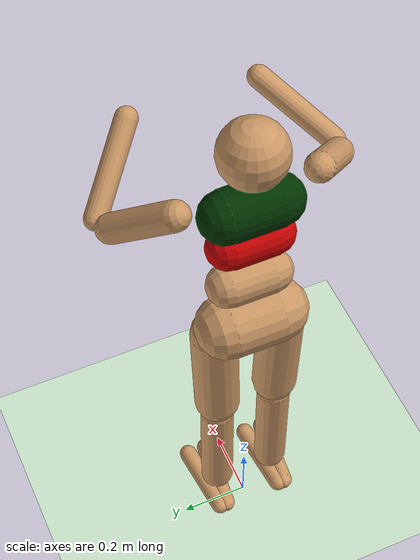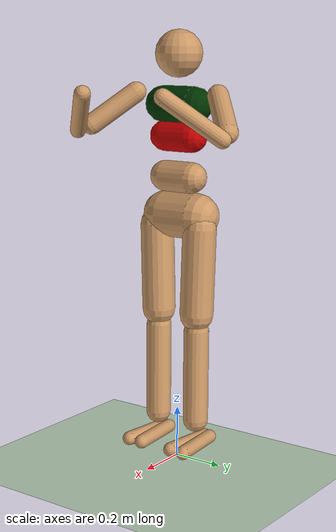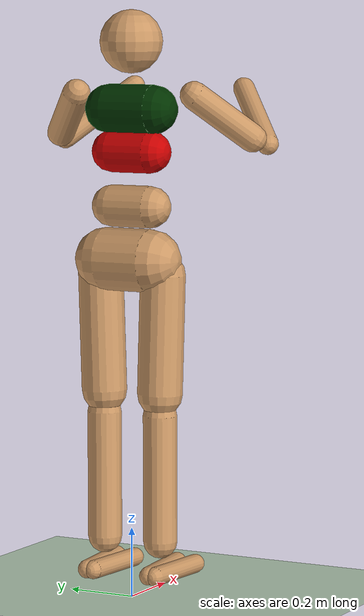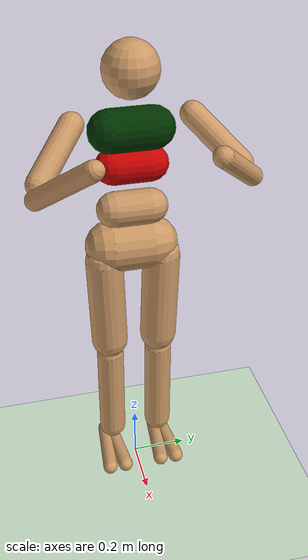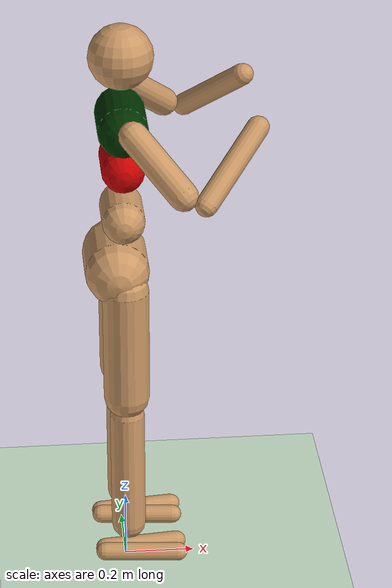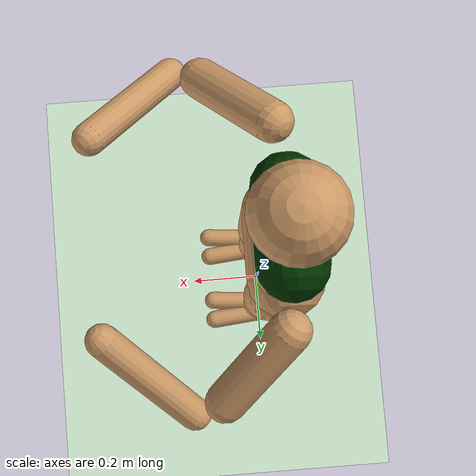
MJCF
<mujoco model="Humanoid">
  <compiler coordinate="local" angle="radian" />
  <size njmax="200" nuser_geom="1" nstack="82825" />
  <default>
    <!--   limited= 动作幅度限制是否奏效
            armature= 对action的限制，可能是时平均，可能需要见效来体现我们算法的you shi
            damping= 卡住joint的作用力，和角速度成正比
        -->
    <joint limited="true" armature="1" damping="1" />
    <geom condim="3" conaffinity="0" margin="0.1" friction="1.0 0.5 0.5" rgba="0.8 0.6 0.4 1" />
  </default>
  <option timestep="0.01" integrator="RK4" />
  <asset>
    <texture type="skybox" builtin="gradient" width="100" height="100" rgb1="1 1 1" rgb2="0 0 0" />
    <texture name="texgeom" type="cube" builtin="flat" mark="cross" width="127" height="1278" rgb1="0.8 0.6 0.4" rgb2="0.8 0.6 0.4" markrgb="1 1 1" random="0.01" />
    <texture name="texplane" type="2d" builtin="checker" rgb1="0 0 0" rgb2="0.8 0.8 0.8" width="100" height="100" />
    <material name='MatPlane' texture="texplane" shininess="1" texrepeat="60 60" specular="1"  reflectance="0.5" />
    <material name='geom' texture="texgeom" texuniform="true" />
  </asset>
  <worldbody>
    <light directional="true" cutoff="100" exponent="1" diffuse="1 1 1" specular=".1 .1 .1" pos="0 0 1.3" dir="-0 0 -1.3" />
    <geom name='floor' material="MatPlane" pos='0 0 0' size='40 40 40' type='plane' conaffinity='1' rgba='0.8 0.9 0.8 1' condim='3' />
    <body name="torso" pos="0 0 1.4">
      <inertial pos="0 0 0.0403624" mass="8.32208" diaginertia="0.159056 0.147471 0.0330627" />
      <joint name="root" type="free" limited="false" pos="0 0 0" axis="0 0 1" margin="0.01" armature="0" damping="0" />
      <geom name="torso1" type="capsule" size="0.07 0.07" pos="0 0 0" quat="0.707107 0.707107 0 0" user="0" rgba='0.0 0.2 0.0 1'/>
      <geom name="head" type="sphere" size="0.09" pos="0 0 0.19" user="0" />
      <geom name="uwaist" type="capsule" size="0.06 0.06" pos="0 0 -0.12" quat="0.707107 0.707107 0 0" user="0" rgba='0.8 0.0 0.0 1'/>
      <body name="pelvis" pos="0 0 -0.425" quat="0.999998 0 -0.002 0">
        <inertial pos="-0.0148387 0 0.0387097" quat="0.997805 0 0.0662273 0" mass="7.88854" diaginertia="0.0795697 0.0619562 0.0449816" />
        <joint name="abdomen_z" type="hinge" pos="0 0 0.22" axis="0 0 1" stiffness="20" range="-0.785398 0.785398" margin="0.01" damping="3" />
        <joint name="abdomen_x" type="hinge" pos="0 0 0.22" axis="1 0 0" stiffness="10" range="-0.349066 0.349066" margin="0.01" damping="3" />
        <joint name="abdomen_y" type="hinge" pos="0 0 0.22" axis="0 1 0" stiffness="10" range="-1.0472 0.523599" margin="0.01" damping="3" />
        <geom name="lwaist" type="capsule" size="0.06 0.06" pos="0 0 0.15" quat="0.707107 0.707107 0 0" user="0" />
        <geom name="butt" type="capsule" size="0.09 0.07" pos="-0.02 0 0" quat="0.707107 0.707107 0 0" user="0" />
        <body name="right_thigh" pos="0 -0.1 -0.04">
          <inertial pos="0 0.005 -0.17" quat="0.999892 0.0147011 0 0" mass="5.37761" diaginertia="0.0792387 0.0792387 0.0113602" />
          <joint name="right_hip1" type="hinge" pos="0 0 0" axis="1 0 0" stiffness="10" range="-0.15 0.0872665" margin="0.01" />
          <joint name="right_hip2" type="hinge" pos="0 0 0" axis="0 0 1" stiffness="10" range="-0.3 0.3" margin="0.01" />
          <joint name="right_hip3" type="hinge" pos="0 0 0" axis="0 1 0" stiffness="20" range="-1.91986 0.174533" margin="0.01" />
          <geom name="right_thigh1" type="capsule" size="0.065 0.170074" pos="0 0.005 -0.17" quat="0.999892 0.0147011 0 0" user="0" />
          <body name="right_shin" pos="0 0.01 -0.403">
            <inertial pos="0 0 -0.181" mass="3.10016" diaginertia="0.045501 0.045501 0.00372174" />
            <joint name="right_knee" type="hinge" pos="0 0 0.05" axis="0 -1 0" range="-1.7 -0.0349066" margin="0.01" />
            <geom name="right_shin1" type="capsule" size="0.049 0.181" pos="0 0 -0.181" user="0" />
            <body name="right_foot" pos="0 0 -0.45">
                            <inertial pos="0.035 -0.01 0" quat="0 0.707107 0 0.707107" mass="1.08992" diaginertia="0.00577723 0.00529682 0.000877682" />
                            <joint name="right_ankle_x" type="hinge" pos="0 0 0.06" axis="0.894427 0 0.447214" stiffness="1" range="-0.3 0.3" margin="0.01" damping="0.3" />
                            <joint name="right_ankle_y" type="hinge" pos="0 0 0.06" axis="0 1 0" stiffness="4" range="-0.4 0.8" margin="0.01" damping="0.3" />
                            <geom name="right_foot_cap1" type="capsule" size="0.027 0.105475" pos="0.035 -0.03 0" quat="0.707107 -0.0670402 -0.703922 0" user="0" />
                            <geom name="right_foot_cap2" type="capsule" size="0.027 0.105475" pos="0.035 0.01 0" quat="0.707107 0.0670402 -0.703922 0" user="0" />
                        </body>
          </body>
        </body>
        <body name="left_thigh" pos="0 0.1 -0.04">
          <inertial pos="0 -0.005 -0.17" quat="0.999892 -0.0147011 0 0" mass="5.37761" diaginertia="0.0792387 0.0792387 0.0113602" />
          <joint name="left_hip1" type="hinge" pos="0 0 0" axis="-1 0 0" stiffness="10" range="-0.15 0.0872665" margin="0.01" />
          <joint name="left_hip2" type="hinge" pos="0 0 0" axis="0 0 -1" stiffness="10" range="-0.3 0.3" margin="0.01" />
          <joint name="left_hip3" type="hinge" pos="0 0 0" axis="0 1 0" stiffness="20" range="-1.91986 0.174533" margin="0.01" />
          <geom name="left_thigh1" type="capsule" size="0.065 0.170074" pos="0 -0.005 -0.17" quat="0.999892 -0.0147011 0 0" user="0" />
          <body name="left_shin" pos="0 -0.01 -0.403">
            <inertial pos="0 0 -0.181" mass="3.10016" diaginertia="0.045501 0.045501 0.00372174" />
            <joint name="left_knee" type="hinge" pos="0 0 0.05" axis="0 -1 0" range="-1.7 -0.0349066" margin="0.01" />
            <geom name="left_shin1" type="capsule" size="0.049 0.181" pos="0 0 -0.181" user="0" />
            <body name="left_foot" pos="0 0 -0.45">
                            <inertial pos="0.035 0.01 0" quat="0 0.707107 0 0.707107" mass="1.08992" diaginertia="0.00577723 0.00529682 0.000877682" />
                            <joint name="left_ankle_x" type="hinge" pos="0 0 0.06" axis="0.894427 0 0.447214" stiffness="1" range="-0.3 0.3" margin="0.01" damping="0.3" />
                            <joint name="left_ankle_y" type="hinge" pos="0 0 0.06" axis="0 1 0" stiffness="4" range="-0.4 0.8" margin="0.01" damping="0.3" />
                            <geom name="left_foot_cap1" type="capsule" size="0.027 0.105475" pos="0.035 0.03 0" quat="0.707107 0.0670402 -0.703922 0" user="0" />
                            <geom name="left_foot_cap2" type="capsule" size="0.027 0.105475" pos="0.035 -0.01 0" quat="0.707107 -0.0670402 -0.703922 0" user="0" />
                        </body>
          </body>
        </body>
      </body>
      <body name="right_upper_arm" pos="0 -0.17 0.06">
        <inertial pos="0.08 -0.08 -0.08" quat="0.888074 -0.325058 -0.325058 0" mass="1.59406" diaginertia="0.0139972 0.0139972 0.00127525" />
        <joint name="right_shoulder1" type="hinge" pos="0 0 0" axis="0 -0.707107 0.707107" stiffness="1" range="-1.0472 0.785398" margin="0.01" />
        <joint name="right_shoulder2" type="hinge" pos="0 0 0" axis="0.816497 0.408248 0.408248" stiffness="1" range="-0.785398 0.785398" margin="0.01" />
        <geom name="right_uarm1" type="capsule" size="0.04 0.106" pos="0.08 -0.08 -0.08" quat="0.888074 -0.325058 -0.325058 0" user="0" />
        <body name="right_lower_arm" pos="0.18 -0.18 -0.18">
                    <inertial pos="0.095 0.095 0.095" quat="0.459701 0.627963 -0.627963 0" mass="0.877969" diaginertia="0.00639835 0.00639835 0.000421864" />
                    <joint name="right_elbow" type="hinge" pos="0 0 0" axis="0 -0.707107 0.707107" range="-1.5708 0.872665" margin="0.01" />
                    <geom name="right_larm" type="capsule" size="0.031 0.129904" pos="0.095 0.095 0.095" quat="0.459701 0.627963 -0.627963 0" user="0" />
                </body>
      </body>
      <body name="left_upper_arm" pos="0 0.17 0.06">
        <inertial pos="0.08 0.08 -0.08" quat="0.888074 0.325058 -0.325058 0" mass="1.59406" diaginertia="0.0139972 0.0139972 0.00127525" />
        <joint name="left_shoulder1" type="hinge" pos="0 0 0" axis="0 0.707107 0.707107" stiffness="1" range="-1.0472 0.785398" margin="0.01" />
        <joint name="left_shoulder2" type="hinge" pos="0 0 0" axis="0.816497 -0.408248 0.408248" stiffness="1" range="-0.785398 0.785398" margin="0.01" />
        <geom name="left_uarm1" type="capsule" size="0.04 0.106" pos="0.08 0.08 -0.08" quat="0.888074 0.325058 -0.325058 0" user="0" />
        <body name="left_lower_arm" pos="0.18 0.18 -0.18">
                    <inertial pos="0.095 -0.095 0.095" quat="0.459701 -0.627963 -0.627963 0" mass="0.877969" diaginertia="0.00639835 0.00639835 0.000421864" />
                    <joint name="left_elbow" type="hinge" pos="0 0 0" axis="0 -0.707107 -0.707107" range="-1.5708 0.872665" margin="0.01" />
                    <geom name="left_larm" type="capsule" size="0.031 0.129904" pos="0.095 -0.095 0.095" quat="0.459701 -0.627963 -0.627963 0" user="0" />
                </body>
      </body>
    </body>
  </worldbody>
  <actuator>
    <motor joint='abdomen_y'        ctrlrange="-30 30" ctrllimited="true"/>
    <motor joint='abdomen_z'        ctrlrange="-30 30" ctrllimited="true"/>
    <motor joint='abdomen_x'        ctrlrange="-30 30" ctrllimited="true"/>
    <motor joint='right_hip1' ctrlrange="-100.0 100.0" ctrllimited="true" />
    <motor joint='right_hip2'       ctrlrange="-100.0 100.0" ctrllimited="true"/>
    <motor joint='right_hip3' ctrlrange="-100.0 100.0" ctrllimited="true" />
    <motor joint='right_knee' ctrlrange="-100.0 100.0" ctrllimited="true" />
    <motor joint='right_ankle_x'    ctrlrange="-20 20" ctrllimited="true"/>
    <motor joint='right_ankle_y'    ctrlrange="-20 20" ctrllimited="true"/>
    <motor joint='left_hip1' ctrlrange="-100.0 100.0" ctrllimited="true" />
    <motor joint='left_hip2'        ctrlrange="-100.0 100.0" ctrllimited="true"/>
    <motor joint='left_hip3' ctrlrange="-100.0 100.0" ctrllimited="true" />
    <motor joint='left_knee' ctrlrange="-100.0 100.0" ctrllimited="true" />
    <motor joint='left_ankle_x'     ctrlrange="-20 20" ctrllimited="true"/>
    <motor joint='left_ankle_y'     ctrlrange="-20 20" ctrllimited="true"/>
    <motor joint='right_shoulder1' ctrlrange="-20 20" ctrllimited="true" />
    <motor joint='right_shoulder2' ctrlrange="-20 20" ctrllimited="true" />
    <motor joint='right_elbow'      ctrlrange="-20 20" ctrllimited="true"/>
    <motor joint='left_shoulder1' ctrlrange="-20 20" ctrllimited="true" />
    <motor joint='left_shoulder2' ctrlrange="-20 20" ctrllimited="true" />
    <motor joint='left_elbow'       ctrlrange="-20 20" ctrllimited="true"/>
  </actuator>
  <sensor>
    <jointpos joint='abdomen_y'       />
    <jointpos joint='abdomen_z'       />
    <jointpos joint='abdomen_x'       />
    <jointpos joint='right_hip1'   />
    <jointpos joint='right_hip2'      />
    <jointpos joint='right_hip3'   />
    <jointpos joint='right_knee'   />
    <jointpos joint='right_ankle_x'   />
    <jointpos joint='right_ankle_y'   />
    <jointpos joint='left_hip1'  />
    <jointpos joint='left_hip2'       />
    <jointpos joint='left_hip3'  />
    <jointpos joint='left_knee'  />
    <jointpos joint='left_ankle_x'    />
    <jointpos joint='left_ankle_y'    />
    <jointpos joint='right_shoulder1' />
    <jointpos joint='right_shoulder2' />
    <jointpos joint='right_elbow'     />
    <jointpos joint='left_shoulder1'  />
    <jointpos joint='left_shoulder2'  />
    <jointpos joint='left_elbow'      />
  </sensor>
</mujoco>
